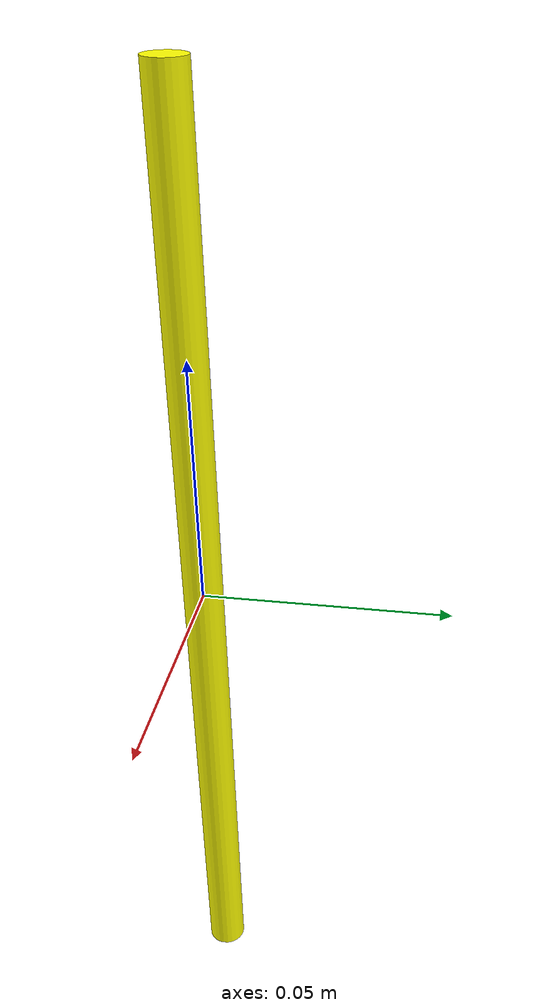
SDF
<?xml version='1.0'?>
<sdf version='1.6'>
<model name='static'>
    <link name='link_0'>
      <inertial>
        <mass>4.523894e-02</mass>
        <inertia>
          <ixx>1.509774e-04</ixx>
          <ixy>0.000000e+00</ixy>
          <ixz>0.000000e+00</ixz>
          <iyy>1.509774e-04</iyy>
          <iyz>0.000000e+00</iyz>
          <izz>3.619115e-07</izz>
        </inertia>
        <pose frame=''>0 0 0 0 -0 0</pose>
      </inertial>
      <pose frame=''>0 0 0.000000 0 -0 0</pose>
      <gravity>1</gravity>
      <self_collide>0</self_collide>
      <kinematic>1</kinematic>
      <enable_wind>0</enable_wind>
      <visual name='visual'>
        <pose frame=''>0 0 0 0 -0 0</pose>
        <geometry>
          <cylinder>
            <radius>0.004000</radius>
            <length>0.200000</length>
          </cylinder>
        </geometry>
        <material>
          <lighting>1</lighting>
          <script>
            <uri>file://media/materials/scripts/gazebo.material</uri>
            <name>Gazebo/Grey</name>
          </script>
          <shader type='pixel'>
            <normal_map>__default__</normal_map>
          </shader>
          <ambient>0.5 0.75 0 1</ambient>
          <diffuse>1 1 0 1</diffuse>
          <specular>0.439 0.439 0.439 1</specular>
          <emissive>0.1 0 0.1 1</emissive>
        </material>
        <transparency>0</transparency>
        <cast_shadows>1</cast_shadows>
      </visual>
      <collision name='collision'>
        <laser_retro>0</laser_retro>
        <max_contacts>10</max_contacts>
        <pose frame=''>0 0 0 0 -0 0</pose>
        <geometry>
          <cylinder>
            <radius>0.004000</radius>
            <length>0.200000</length>
          </cylinder>
        </geometry>
        <surface>
          <friction>
            <ode>
              <mu>100</mu>
              <mu2>100</mu2>
              <fdir1>0 0 0</fdir1>
              <slip1>0</slip1>
              <slip2>0</slip2>
            </ode>
            <torsional>
              <coefficient>1</coefficient>
              <patch_radius>0</patch_radius>
              <surface_radius>0</surface_radius>
              <use_patch_radius>1</use_patch_radius>
              <ode>
                <slip>0</slip>
              </ode>
            </torsional>
          </friction>
          <bounce>
            <restitution_coefficient>0</restitution_coefficient>
            <threshold>1e+06</threshold>
          </bounce>
          <contact>
            <collide_without_contact>0</collide_without_contact>
            <collide_without_contact_bitmask>1</collide_without_contact_bitmask>
            <collide_bitmask>1</collide_bitmask>
            <ode>
              <soft_cfm>0</soft_cfm>
              <soft_erp>0.2</soft_erp>
              <kp>1e+13</kp>
              <kd>1</kd>
              <max_vel>0.01</max_vel>
              <min_depth>0</min_depth>
            </ode>
            <bullet>
              <split_impulse>1</split_impulse>
              <split_impulse_penetration_threshold>-0.01</split_impulse_penetration_threshold>
              <soft_cfm>0</soft_cfm>
              <soft_erp>0.2</soft_erp>
              <kp>1e+13</kp>
              <kd>1</kd>
            </bullet>
          </contact>
        </surface>
      </collision>
    </link>
    <static>0</static>
    <allow_auto_disable>1</allow_auto_disable>
  </model>
</sdf>
